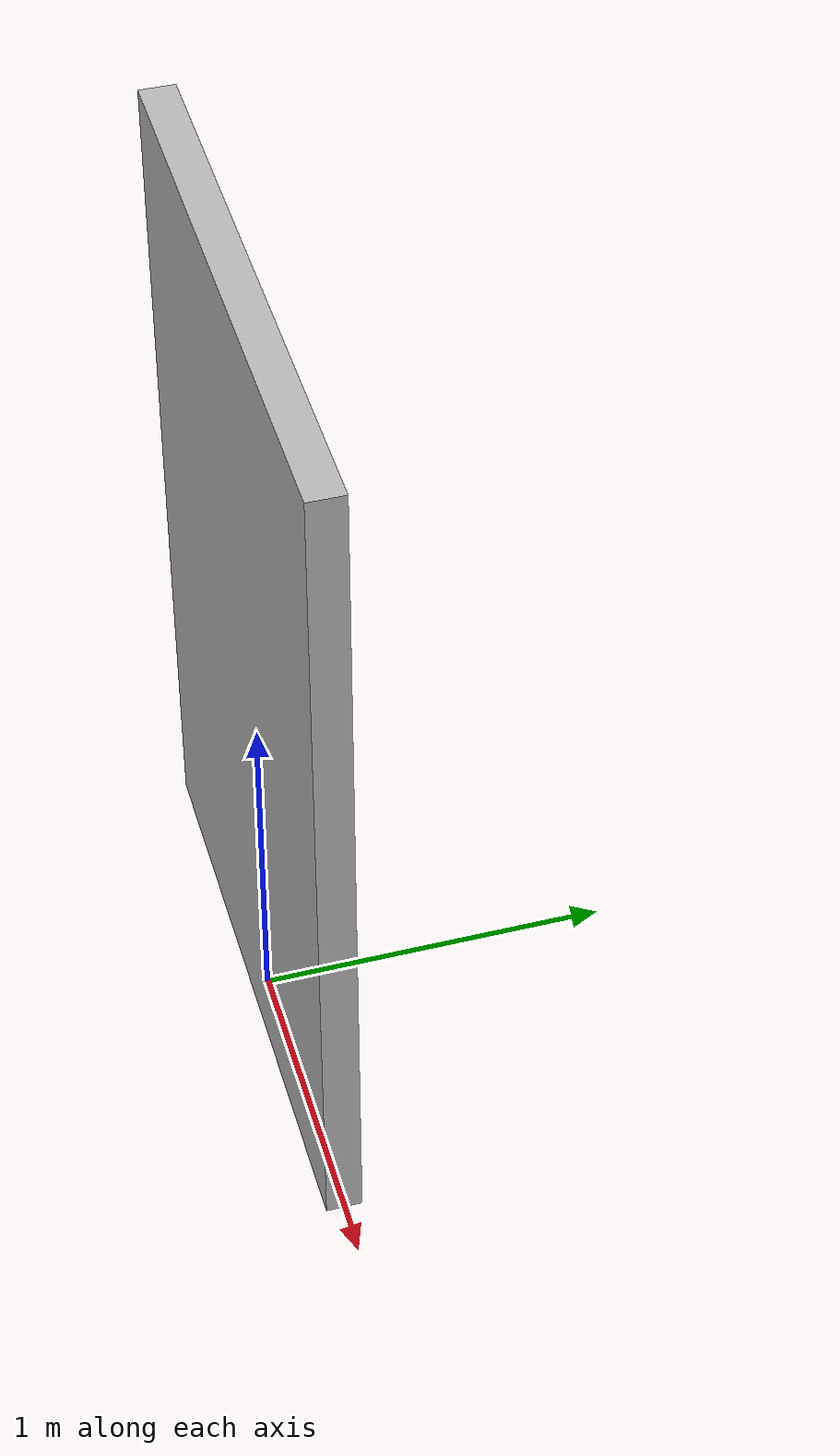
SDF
<?xml version='1.0'?>
<sdf version='1.6'>
  <model name='wall_unit_1_7'>
    <pose frame=''>0 0 0 0 -0 0</pose>
    <link name='link'>
      <collision name='collision'>
        <geometry>
          <box>
            <size>1.7 0.1 2.5</size>
          </box>
        </geometry>
        <pose frame=''>0 0 1.25 0 -0 0</pose>
      </collision>
      <visual name='visual'>
        <pose frame=''>0 0 1.25 0 -0 0</pose>
        <geometry>
          <box>
            <size>1.7 0.1 2.5</size>
          </box>
        </geometry>
        <material>
          <script>
            <uri>model://wall_unit_1_7/materials/scripts</uri>
            <uri>model://wall_unit_1_7/materials/textures</uri>
            <name>vrc/wall_unit_1_7</name>
          </script>
        </material>
      </visual>
    </link>
    <static>1</static>
  </model>
</sdf>
